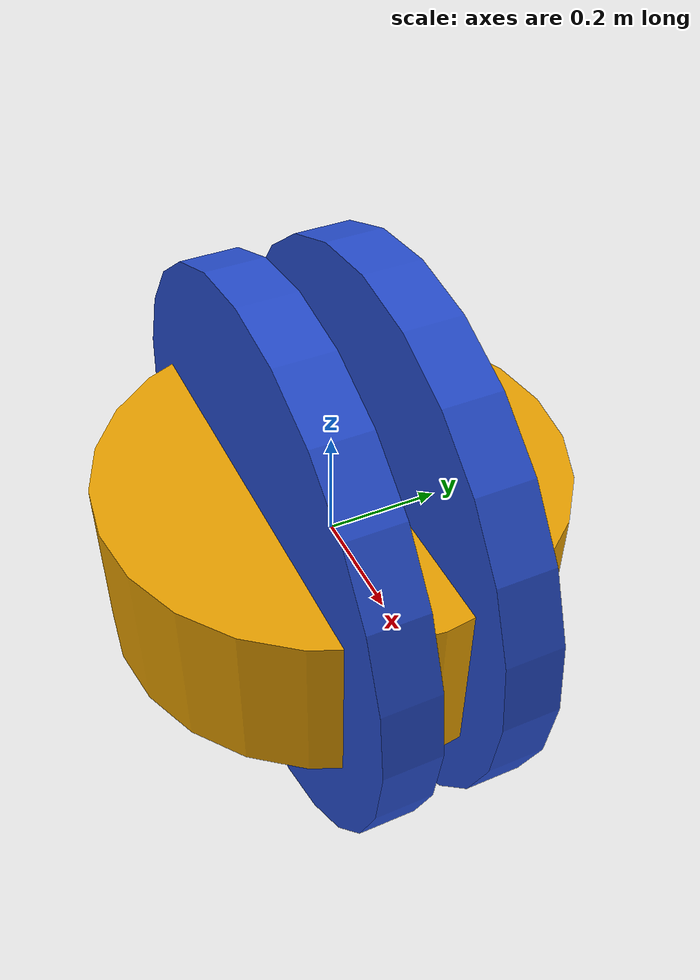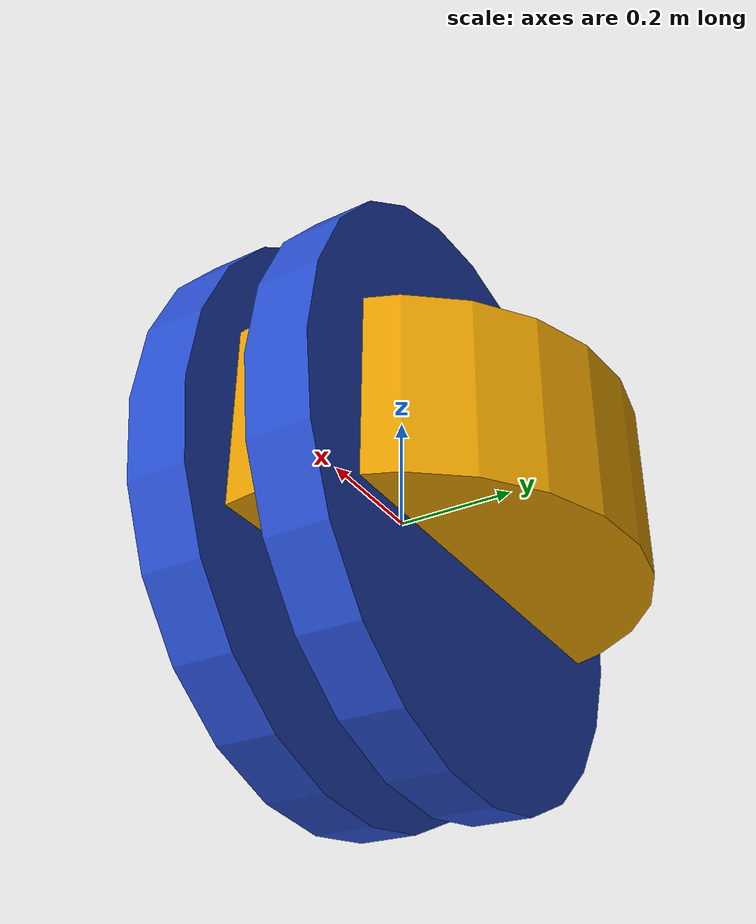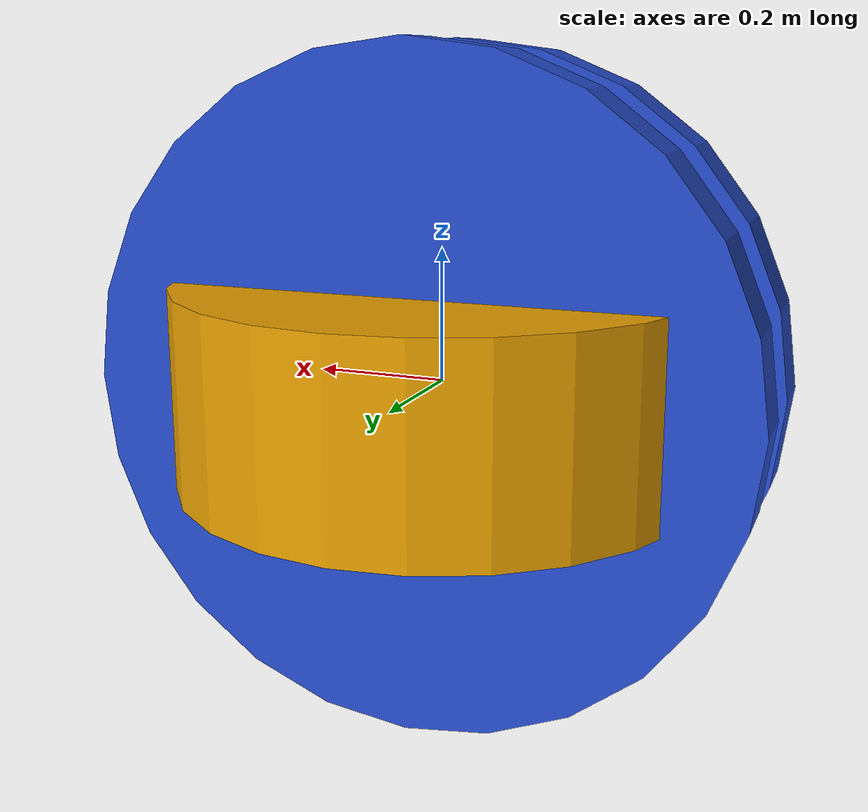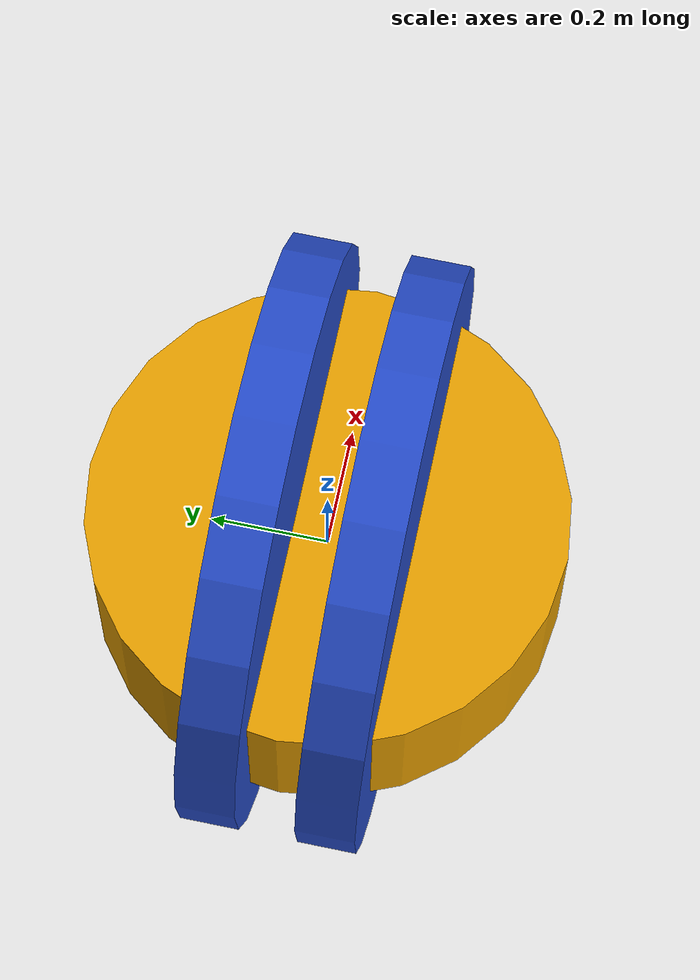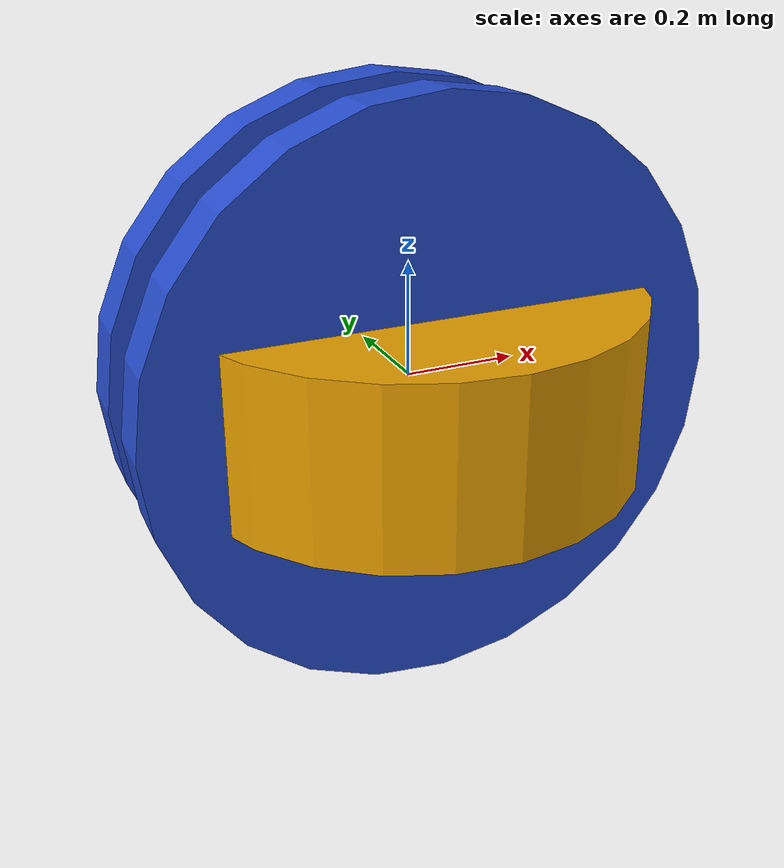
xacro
<?xml version="1.0"?>
<robot name="myrobot"
    xmlns:xacro="https://www.ros.org/wiki/xacro">
    <xacro:include filename="$(find robot)/urdf/meterial.xacro" />
    <xacro:include filename="$(find robot)/urdf/inertial.xacro" />

    <material name="white">
        <color rgba="1 1 1 1"/>
    </material>

    <link name="base_link">
        <visual>
            <geometry>
                <cylinder length="0.3" radius="0.4"/>
            </geometry>
        </visual>
        <collision>
            <geometry>
                <cylinder length="0.3" radius="0.2"/>
            </geometry>
        </collision>
        <xacro:default_inertial mass="10"/>
    </link>
    <link name="right_wheel">
        <xacro:default_wheel_visual_collision reflect="0.3"/>
        <xacro:default_inertial mass="10" />

    </link>

    <link name="left_wheel">
        <xacro:default_wheel_visual_collision reflect="-0.3"/>
        <xacro:default_inertial mass="10"/>

    </link>

    <joint name="base_to_right_wheel" type="continuous">
        <parent link="base_link" />
        <child link="right_wheel" />
        <origin xyz="0 -0.2 0" />
        <axis xyz="0 1 0"/>
    </joint>

    <joint name="base_to_left_wheel" type="continuous">
        <parent link="base_link" />
        <child link="left_wheel" />
        <origin xyz="0 0.2 0" />
        <axis xyz="0 1 0"/>
    </joint>
    <transmission name="right_wheel_trans">
      <type>transmission_interface/SimpleTransmission</type>
      <actuator name="right_wheel_motor">
        <mechanicalReduction>1</mechanicalReduction>
      </actuator>
      <joint name="base_to_right_wheel">
        <hardwareInterface>VelocityJointInterface</hardwareInterface>
      </joint>
    </transmission>
    <transmission name="left_wheel_trans">
      <type>transmission_interface/SimpleTransmission</type>
      <actuator name="left_wheel_motor">
        <mechanicalReduction>1</mechanicalReduction>
      </actuator>
      <joint name="base_to_$left_wheel">
        <hardwareInterface>VelocityJointInterface</hardwareInterface>
      </joint>
    </transmission>

<gazebo>
    <plugin name="gazebo_ros_control" filename="libgazebo_ros_control.so">
      <robotNamespace>/</robotNamespace>
    </plugin>
  </gazebo>

  <gazebo reference="left_wheel">
      <mu1 value="200.0"/>
      <mu2 value="100.0"/>
      <kp value="10000000.0" />
      <kd value="1.0" />
      <material>Gazebo/Grey</material>
    </gazebo>
    <gazebo reference="right_wheel">
      <mu1 value="200.0"/>
      <mu2 value="100.0"/>
      <kp value="10000000.0" />
      <kd value="1.0" />
      <material>Gazebo/Grey</material>
    </gazebo>
</robot>

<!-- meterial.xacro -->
<robot name="myrobot" xmlns:xacro="https://www.ros.org/wiki/xacro">

  <xacro:macro name="default_wheel_visual_collision" params="reflect">

 <visual>
            <geometry>
                <cylinder length="0.1" radius="0.5"/>
            </geometry>
            <material name="blue"/>
            <origin rpy="0 1.57075 1.57075" xyz="0 ${reflect} 0"/>
        </visual>
        <collision>
            <geometry>
                <cylinder length="0.1" radius="0.5"/>
            </geometry>
        </collision>
           <inertial>
      <mass value="10" />
      <inertia ixx="1.0" ixy="1.0" ixz="1.0" iyy="1.0" iyz="1.0" izz="1.0" />
    </inertial>
  </xacro:macro>
</robot>

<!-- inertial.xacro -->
<robot name="myrobot" xmlns:xacro="https://www.ros.org/wiki/xacro" >
<xacro:macro name="default_inertial" params="mass">
    <inertial>
      <mass value="${mass}" />
      <inertia ixx="1.0" ixy="0.0" ixz="0.0" iyy="1.0" iyz="0.0" izz="1.0" />
    </inertial>
  </xacro:macro>
</robot>
